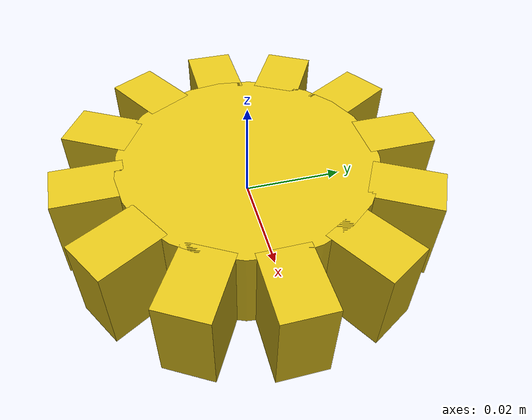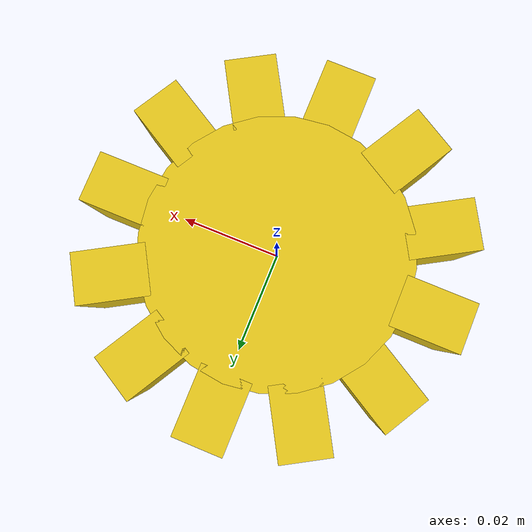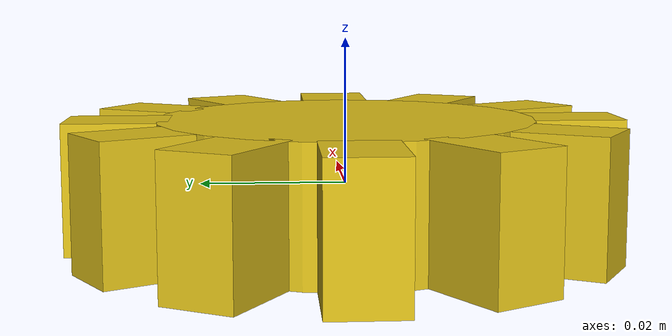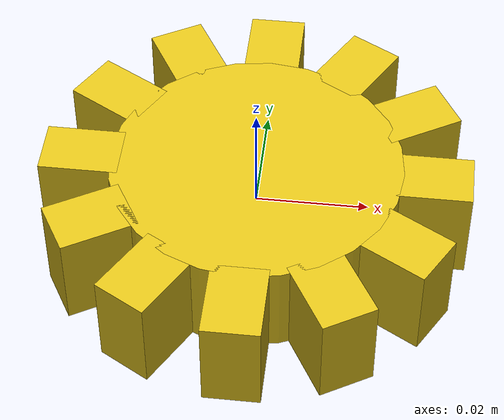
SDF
<?xml version="1.0"?>
<sdf version="1.8">
  <model name="sensoragent_part_gear">
    <link name="part">
      <inertial>
        <mass>0.20</mass>
        <inertia>
          <ixx>0.0000718</ixx>
          <iyy>0.0000718</iyy>
          <izz>0.0001369</izz>
        </inertia>
      </inertial>
      <collision name="collision">
        <geometry><cylinder><radius>0.037</radius><length>0.018</length></cylinder></geometry>
        <surface><friction><ode><mu>1.2</mu><mu2>1.2</mu2></ode></friction></surface>
      </collision>
      <visual name="core">
        <geometry><cylinder><radius>0.026</radius><length>0.018</length></cylinder></geometry>
        <material><diffuse>0.88 0.76 0.10 1</diffuse></material>
      </visual>
      <visual name="tooth_0">
        <pose>0.031 0 0 0 0 0</pose>
        <geometry><box><size>0.014 0.010 0.018</size></box></geometry>
        <material><diffuse>0.88 0.76 0.10 1</diffuse></material>
      </visual>
      <visual name="tooth_1">
        <pose>0.02685 0.0155 0 0 0 0.523599</pose>
        <geometry><box><size>0.014 0.010 0.018</size></box></geometry>
        <material><diffuse>0.88 0.76 0.10 1</diffuse></material>
      </visual>
      <visual name="tooth_2">
        <pose>0.0155 0.02685 0 0 0 1.047198</pose>
        <geometry><box><size>0.014 0.010 0.018</size></box></geometry>
        <material><diffuse>0.88 0.76 0.10 1</diffuse></material>
      </visual>
      <visual name="tooth_3">
        <pose>0 0.031 0 0 0 1.570796</pose>
        <geometry><box><size>0.014 0.010 0.018</size></box></geometry>
        <material><diffuse>0.88 0.76 0.10 1</diffuse></material>
      </visual>
      <visual name="tooth_4">
        <pose>-0.0155 0.02685 0 0 0 2.094395</pose>
        <geometry><box><size>0.014 0.010 0.018</size></box></geometry>
        <material><diffuse>0.88 0.76 0.10 1</diffuse></material>
      </visual>
      <visual name="tooth_5">
        <pose>-0.02685 0.0155 0 0 0 2.617994</pose>
        <geometry><box><size>0.014 0.010 0.018</size></box></geometry>
        <material><diffuse>0.88 0.76 0.10 1</diffuse></material>
      </visual>
      <visual name="tooth_6">
        <pose>-0.031 0 0 0 0 3.141593</pose>
        <geometry><box><size>0.014 0.010 0.018</size></box></geometry>
        <material><diffuse>0.88 0.76 0.10 1</diffuse></material>
      </visual>
      <visual name="tooth_7">
        <pose>-0.02685 -0.0155 0 0 0 3.665191</pose>
        <geometry><box><size>0.014 0.010 0.018</size></box></geometry>
        <material><diffuse>0.88 0.76 0.10 1</diffuse></material>
      </visual>
      <visual name="tooth_8">
        <pose>-0.0155 -0.02685 0 0 0 4.188790</pose>
        <geometry><box><size>0.014 0.010 0.018</size></box></geometry>
        <material><diffuse>0.88 0.76 0.10 1</diffuse></material>
      </visual>
      <visual name="tooth_9">
        <pose>0 -0.031 0 0 0 4.712389</pose>
        <geometry><box><size>0.014 0.010 0.018</size></box></geometry>
        <material><diffuse>0.88 0.76 0.10 1</diffuse></material>
      </visual>
      <visual name="tooth_10">
        <pose>0.0155 -0.02685 0 0 0 5.235988</pose>
        <geometry><box><size>0.014 0.010 0.018</size></box></geometry>
        <material><diffuse>0.88 0.76 0.10 1</diffuse></material>
      </visual>
      <visual name="tooth_11">
        <pose>0.02685 -0.0155 0 0 0 5.759587</pose>
        <geometry><box><size>0.014 0.010 0.018</size></box></geometry>
        <material><diffuse>0.88 0.76 0.10 1</diffuse></material>
      </visual>
    </link>
  </model>
</sdf>
